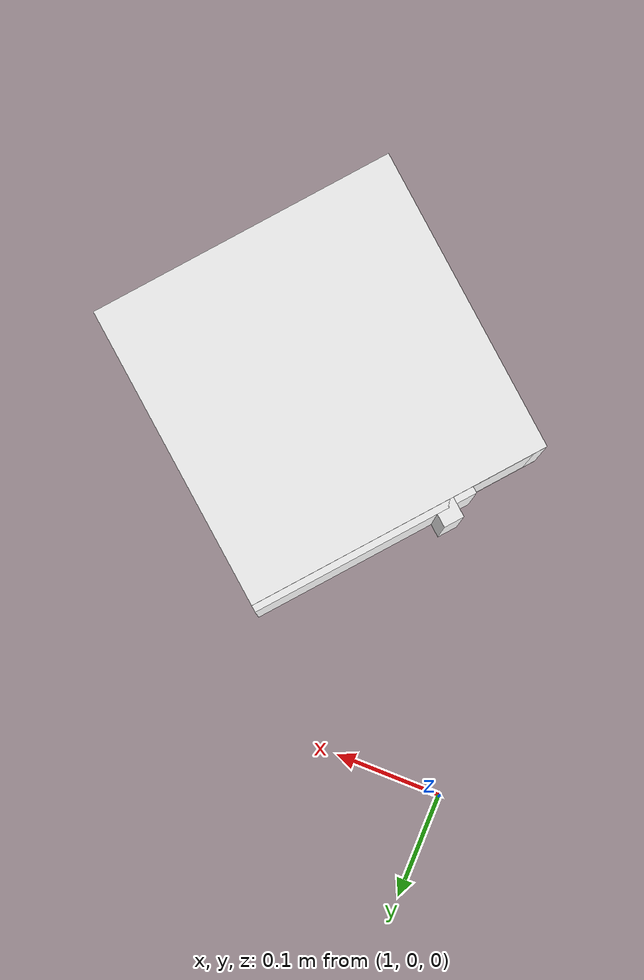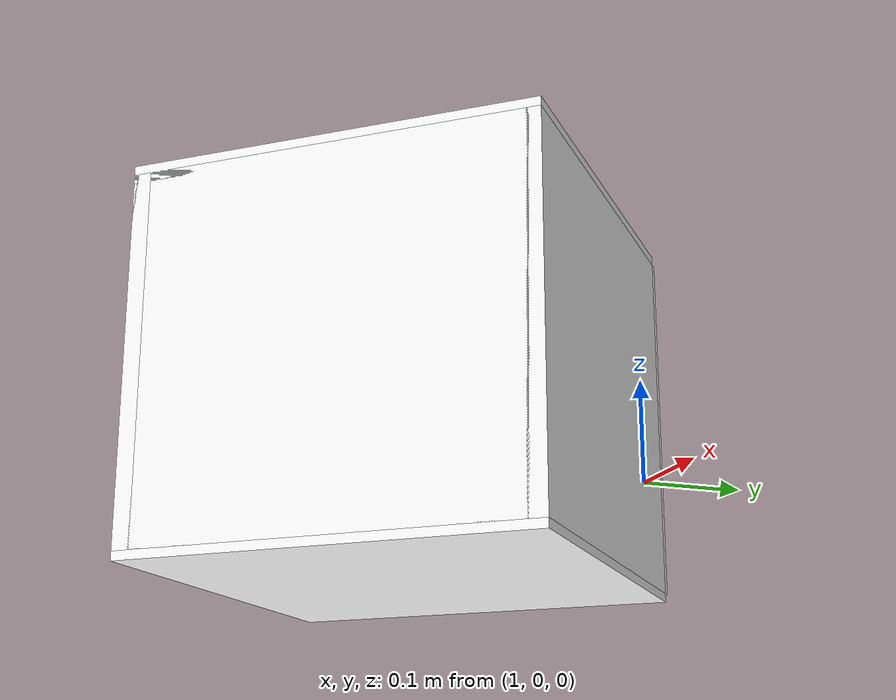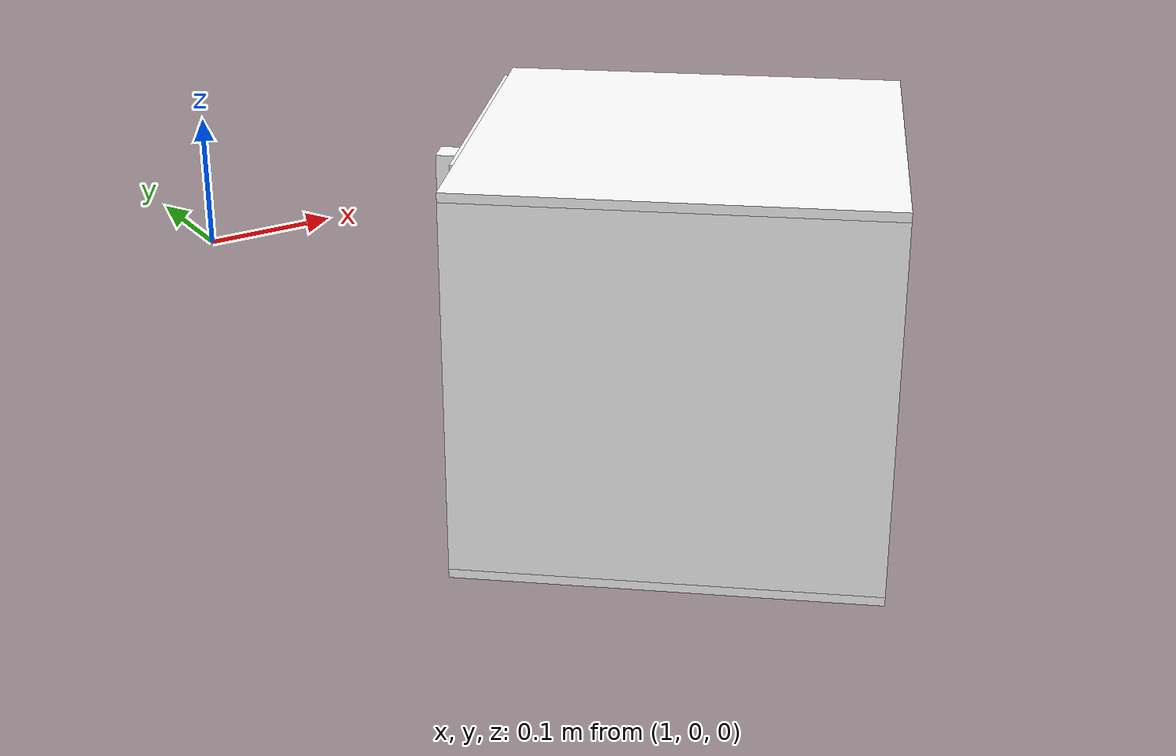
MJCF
<mujoco model="cabinet">
    <compiler angle="radian" eulerseq='zxy' />
    <option gravity = "0 0 0" />
    <option>
        <flag contact = "disable"/>
    </option>
    <statistic	extent="1.0" center="0.0 0.0 0.0"/>
    <visual>
        <map fogstart="3" fogend="5" force="0.1" znear=" 0.100000 " zfar=" 12.000000 "/>
    </visual>
    <size njmax="500" nconmax="100" />
    <actuator>
        <velocity joint="bottom_left_hinge" name="viva_revolution" kv='10'></velocity>
    </actuator>
    <asset>
        <texture builtin="flat" name="tabletex" height="32" width="32" rgb1="1 1 1" type="cube"></texture>
        <texture builtin="flat" name="objtex" height="32" width="32" rgb1="1 1 1" type="cube"></texture>
        <texture builtin="flat" name="handletex" height="32" width="32" rgb1="1 1 1" type="cube"></texture>
        <texture builtin="flat" name="wallpaper" height="32" width="32" rgb1="1 0 0" type="cube"></texture>
        <texture builtin="flat" name="kp" height="32" width="32" rgb1="1 1 1" type="cube"></texture>
        <material name="geomTable" shininess="0.03" specular="0.75" texture="tabletex"></material>
        <material name="geomObj" shininess="0.03" specular="0.75" texture="objtex"></material>
        <material name="geomHandle" shininess="0.03" specular="0.75" texture="handletex"></material>
        <material name="ax" shininess="0.03" specular="0.75" texture="wallpaper"></material>
        <material name="bg" shininess="0.03" specular="0.75" texture="wallpaper"></material>
        <material name="geomKeypad" shininess="0.03" specular="0.75" texture="kp"></material>
    </asset>
    <worldbody>
        <body name="cabinet_bottom" pos= " 1.238878 -0.306494 -0.143584 "  quat= " 0.341586 0.000000 0.000000 0.939850" >
            <inertial pos="0 0 0" mass="1" diaginertia="1 1 1" />
            <geom size= " 0.149214 0.149868 0.006552 "  type="box" material="geomObj" name="b"/>
            <body name="cabinet_left" pos= " 0.000000 -0.143317 0.134000 " >
                <inertial pos="0 0 0" mass="1" diaginertia="1 1 1" />
                <geom size= " 0.149214 0.006552 0.134000 "  type="box" material="geomObj" name="c" />
            </body>
            <body name="cabinet_right" pos= " 0.000000 0.143317 0.134000 " >
                <inertial pos="0 0 0" mass="1" diaginertia="1 1 1" />
                <geom size= " 0.149214 0.006552 0.134000 "  type="box" material="geomObj" name="d" />
            </body>
            <body name="cabinet_top" pos= " 0.000000 0.000000 0.268001 " >
                <inertial pos="0 0 0" mass="1" diaginertia="1 1 1" />
                <geom size= " 0.149214 0.149868 0.006552 "  type="box" material="geomObj" name="e"/>
            </body>
            <body name="cabinet_back" pos= " -0.142662 0.000000 0.134000 "  >
                <inertial pos="0 0 0" mass="1" diaginertia="1 1 1" />
                <geom size= " 0.006552 0.149868 0.134000 "  type="box" material="geomObj" name="f" />
            </body>
            <body name="cabinet_keypad" pos= " 0.006552 0.111401 0.134000 " >
                <inertial pos="0 0 0" mass="1" diaginertia="1 1 1" />
                <geom size= " 0.142662 0.037467 0.127449 "  type="box" material="geomKeypad" name="keypizzlemynizzle" />
            </body>
            <body name="cabinet_left_hinge" pos= " 0.149214 -0.149868 0.134000 " >
                <inertial pos= " 0.000000 0.112401 0.000000 "  mass="1" diaginertia="1 1 1" />
                <joint name="bottom_left_hinge" type="hinge" pos="0 0 0" axis="0 0 1" limited="true" range= "-2.3 0"  />
                <geom size= " 0.006552 0.112401 0.134000 "  pos= " 0.000000 0.112401 0.000000 "  type="box" material="geomObj" name="g"/>
                <body name="handle_link" pos= " 0.010000 0.194803 0.000000 " >
                    <inertial pos="0 0 0" mass="1" diaginertia="1 1 1" />
                    <geom size= " 0.010000 0.010000 0.134000 "  type="box" material="geomHandle" name="h"/>
                </body>
            </body>
        </body>
        <body name="external_camera_body_0" pos="0.0 0 0.00" >
            <camera euler="-1.57 1.57 0.0" fovy=" 54.280851 " name="external_camera_0" pos="0.0 0 0"></camera>
            <inertial pos= " 0.00 0.0 0.000000 " mass="1" diaginertia="1 1 1" />
            <joint name="cam_j" pos="0.0 0 0" axis = "1 0 0" type="free" />
        </body>
    </worldbody>
</mujoco>
